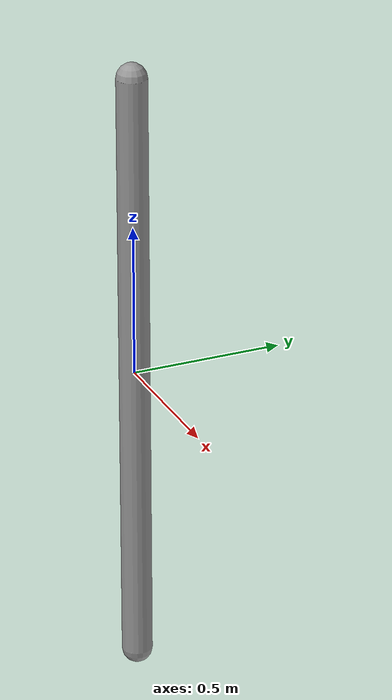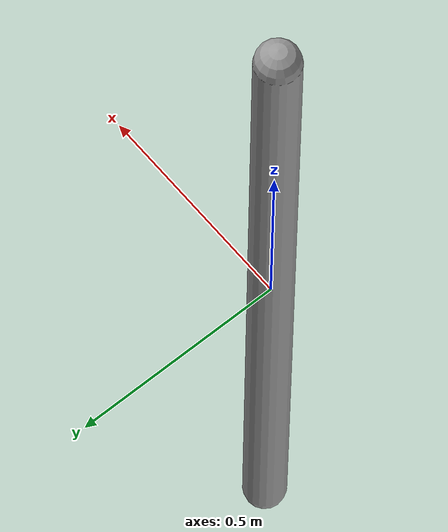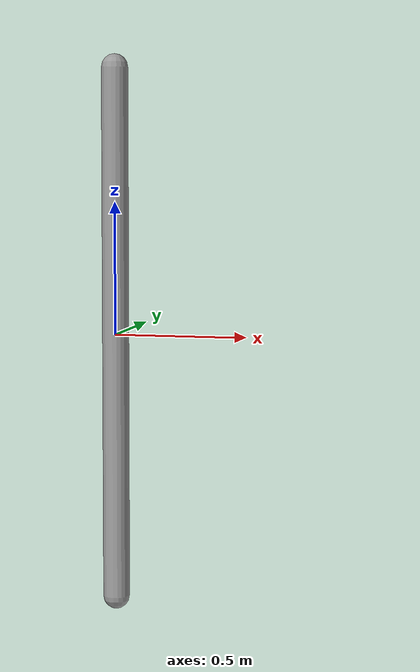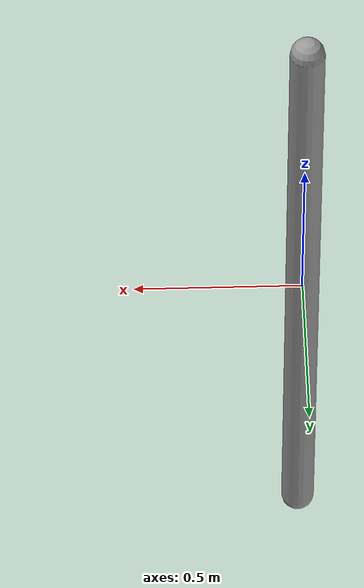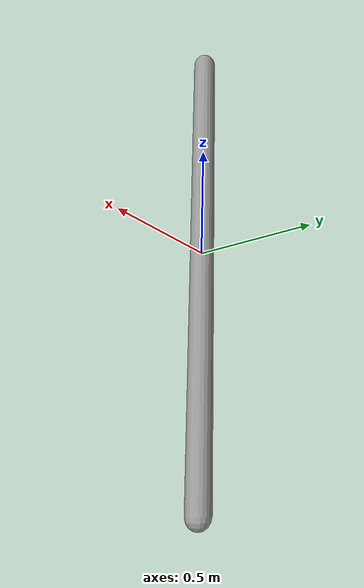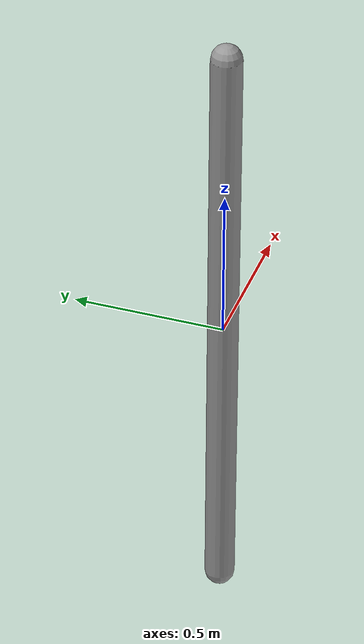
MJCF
<mujoco model="obstacle_pole">
  <worldbody>
    <body name="obs" pos="0 0 0">
      <!-- Vertical pole: diameter 0.1 m (radius 0.05), height 2.0 m (half-length 1.0) -->
      <geom name="pole_geom" type="capsule" size="0.05 1.0"
            rgba="0.6 0.6 0.6 1" contype="1" conaffinity="1"/>
    </body>
  </worldbody>
</mujoco>
